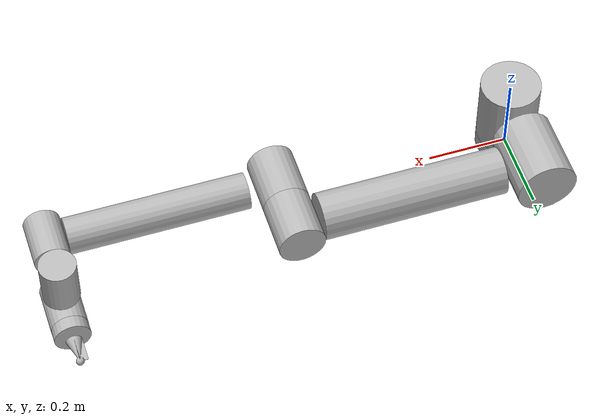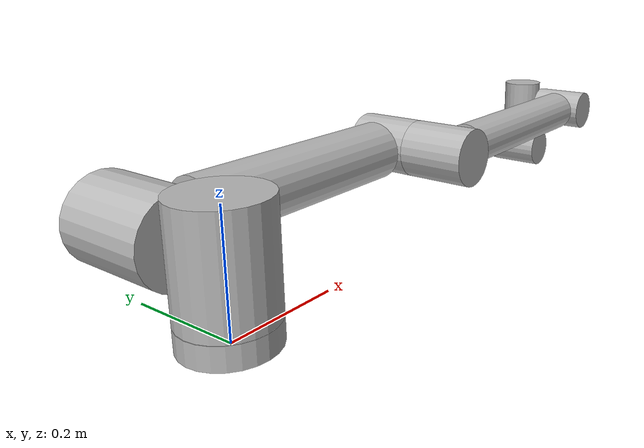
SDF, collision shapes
<?xml version='1.0'?>
<sdf version='1.6'>

  <model name='ur10'>
    <link name='base'>
      <inertial>
        <mass>4</mass>
        <inertia>
          <ixx>0.00610633</ixx>
          <ixy>0</ixy>
          <ixz>0</ixz>
          <iyy>0.00610633</iyy>
          <iyz>0</iyz>
          <izz>0.01125</izz>
        </inertia>
      </inertial>
      <collision name='collision_base'>
      <pose>0 0 0.019 0 -0 0</pose>
        <geometry>
          <cylinder>
            <radius>0.075</radius>
            <length>0.038</length>
          </cylinder>
        </geometry>
      </collision>
      <visual name='visual_base'>
        <geometry>
          <mesh>
            <uri>model://ur10/meshes/base.dae</uri>
          </mesh>
        </geometry>
      </visual>
    </link>
    <link name='shoulder'>
      <pose>0 0 .1273 0 -0 0</pose>
      <inertial>
        <mass>7.778</mass>
        <inertia>
          <ixx>0.0314743</ixx>
          <ixy>0</ixy>
          <ixz>0</ixz>
          <iyy>0.0314743</iyy>
          <iyz>0</iyz>
          <izz>0.0218756</izz>
        </inertia>
      </inertial>
      <collision name='collision_shoulder'>
        <geometry>
          <cylinder>
            <radius>0.075</radius>
            <length>0.177</length>
          </cylinder>
        </geometry>
      </collision>
      <visual name='visual_shoulder'>
        <geometry>
          <mesh>
            <uri>model://ur10/meshes/shoulder.dae</uri>
          </mesh>
        </geometry>
      </visual>
    </link>

    <link name='upper_arm'>
      <pose>0 0.220941 0.1273 3.14159 1.57079 3.14159</pose>
      <inertial>
        <pose>0 0 0.306 0 0 0</pose>
        <mass>12.93</mass>
        <inertia>
          <ixx>0.421754</ixx>
          <ixy>0</ixy>
          <ixz>0</ixz>
          <iyy>0.421754</iyy>
          <iyz>0</iyz>
          <izz>0.0363656</izz>
        </inertia>
      </inertial>

      <collision name='collision_upper_arm1'>
        <pose>0 -0.045 0 1.5707 0 0</pose>
        <geometry>
          <cylinder>
            <radius>0.075</radius>
            <length>0.177</length>
          </cylinder>
        </geometry>
      </collision>

      <collision name='collision_upper_arm2'>
        <pose>0 -0.0436 0.32 0 0 1.5707</pose>
        <geometry>
          <cylinder>
            <radius>0.058</radius>
            <length>0.461</length>
          </cylinder>
        </geometry>
      </collision>

      <collision name='collision_upper_arm3'>
        <pose>0 -0.040 0.613 1.5707 0 0</pose>
        <geometry>
          <cylinder>
            <radius>0.058</radius>
            <length>0.129</length>
          </cylinder>
        </geometry>
      </collision>

      <visual name='visual_upper_arm'>
        <geometry>
          <mesh>
            <uri>model://ur10/meshes/upperarm.dae</uri>
          </mesh>
        </geometry>
      </visual>
    </link>

    <link name='forearm'>
      <pose>0.612 0.049041 0.1273 3.14159 1.57079 3.14159</pose>
      <inertial>
        <pose>0 0 0.28615 0 -0 0</pose>
        <mass>3.87</mass>
        <inertia>
          <ixx>0.11107</ixx>
          <ixy>0</ixy>
          <ixz>0</ixz>
          <iyy>0.11107</iyy>
          <iyz>0</iyz>
          <izz>0.0108844</izz>
        </inertia>
      </inertial>
      <collision name='collision_forearm1'>
        <pose>0 0 0.001 1.5707 0 0</pose>
        <geometry>
          <cylinder>
            <radius>0.058</radius>
            <length>0.136</length>
          </cylinder>
        </geometry>
      </collision>

      <collision name='collision_forearm2'>
        <pose>0 0 0.305 0 0 1.5707</pose>
        <geometry>
          <cylinder>
            <radius>0.045</radius>
            <length>0.447</length>
          </cylinder>
        </geometry>
      </collision>

      <collision name='collision_forearm3'>
        <pose>0 0.001 0.5735 1.5707 0 0</pose>
        <geometry>
          <cylinder>
            <radius>0.045</radius>
            <length>0.119</length>
          </cylinder>
        </geometry>
      </collision>

      <visual name='visual_forearm'>
        <geometry>
          <mesh>
            <uri>model://ur10/meshes/forearm.dae</uri>
          </mesh>
        </geometry>
      </visual>
    </link>

    <link name='wrist_1'>
      <pose>1.1843 0.049041 0.1273 3.14159 3.58979e-09 3.14159</pose>
      <inertial>
        <mass>1.96</mass>
        <inertia>
          <ixx>0.00510825</ixx>
          <ixy>0</ixy>
          <ixz>0</ixz>
          <iyy>0.00510825</iyy>
          <iyz>0</iyz>
          <izz>0.0055125</izz>
        </inertia>
      </inertial>
      <collision name='collision_wrist_1'>
        <pose>0 0.115 0.0025 0 0 0</pose>
        <geometry>
          <cylinder>
            <radius>0.0455</radius>
            <length>0.119</length>
          </cylinder>
        </geometry>
      </collision>
      <visual name='visual_wrist_1'>
        <geometry>
          <mesh>
            <uri>model://ur10/meshes/wrist1.dae</uri>
          </mesh>
        </geometry>
      </visual>
    </link>

    <link name='wrist_2'>
      <pose>1.1843 0.163941 0.1273 3.14159 3.58979e-09 3.14159</pose>
      <inertial>
        <mass>1.96</mass>
        <inertia>
          <ixx>0.00510825</ixx>
          <ixy>0</ixy>
          <ixz>0</ixz>
          <iyy>0.00510825</iyy>
          <iyz>0</iyz>
          <izz>0.0055125</izz>
        </inertia>
      </inertial>
      <collision name='collision_wrist_2'>
        <pose>0 0.002 0.11659 1.5707 0 0</pose>
        <geometry>
          <cylinder>
            <radius>0.0455</radius>
            <length>0.119</length>
          </cylinder>
        </geometry>
      </collision>
      <visual name='visual_wrist_2'>
        <geometry>
          <mesh>
            <uri>model://ur10/meshes/wrist2.dae</uri>
          </mesh>
        </geometry>
      </visual>
    </link>

    <link name='wrist_3'>
      <pose>1.1843 0.163941 0.0116 3.14159 3.58979e-09 3.14159</pose>
      <inertial>
        <mass>0.202</mass>
        <inertia>
          <ixx>0.000526462</ixx>
          <ixy>0</ixy>
          <ixz>0</ixz>
          <iyy>0.000526462</iyy>
          <iyz>0</iyz>
          <izz>0.000568125</izz>
        </inertia>
      </inertial>
      <collision name='collision_wrist_3'>
        <pose>0 0.0765 0 1.5707 0 0</pose>
        <geometry>
          <cylinder>
            <radius>0.045</radius>
            <length>0.031</length>
          </cylinder>
        </geometry>
      </collision>
      <visual name='visual_wrist_3'>
        <geometry>
          <mesh>
            <uri>model://ur10/meshes/wrist3.dae</uri>
          </mesh>
        </geometry>
      </visual>
    </link>

    <link name='end_eff'>
      <pose>1.1843 0.265 0.0116 0 0 0</pose>
      <inertial>
        <mass>0.202</mass>
        <inertia>
          <ixx>0.000526462</ixx>
          <ixy>0</ixy>
          <ixz>0</ixz>
          <iyy>0.000526462</iyy>
          <iyz>0</iyz>
          <izz>0.000568125</izz>
        </inertia>
      </inertial>
      <collision name='collision_end_eff'>
      <pose>0 0 0 0 0 1.5707</pose>
        <geometry>
          <mesh>
            <uri>model://ur10/meshes/end.dae</uri>
          </mesh>
        </geometry>
      </collision>
      <visual name='visual_end_eff'>
      <pose>0 0 0 0 0 1.5707</pose>
        <geometry>
          <mesh>
            <uri>model://ur10/meshes/end.dae</uri>
          </mesh>
        </geometry>
      </visual>
    </link>

    <link name='tip'>
      <pose>1.1843 0.335 0.0116 0 0 0</pose>
      <inertial>
        <mass>0.01</mass>
        <inertia>
          <ixx>0.0001</ixx>
          <ixy>0</ixy>
          <ixz>0</ixz>
          <iyy>0.0001</iyy>
          <iyz>0</iyz>
          <izz>0.0001</izz>
        </inertia>
      </inertial>
      <visual name='visual_tip'>
      <pose>0 0 0 0 0 0</pose>
        <geometry>
			<sphere> <radius>.001</radius> </sphere>
        </geometry>
      </visual>
    </link>

    <joint name='shoulder_pan' type='revolute'>
      <child>shoulder</child>
      <parent>base</parent>
      <axis>
        <xyz>0 0 1</xyz>
        <limit>
          <lower>-3,14159</lower>
          <upper>3,14159</upper>
          <effort>330</effort>
          <velocity>2.16</velocity>
        </limit>
        <dynamics>
          <spring_reference>0</spring_reference>
          <spring_stiffness>0</spring_stiffness>
          <damping>0</damping>
          <friction>0</friction>
        </dynamics>
        <use_parent_model_frame>1</use_parent_model_frame>
      </axis>
            <physics>
        <ode>
          <limit>
            <cfm>0</cfm>
            <erp>0.2</erp>
          </limit>
          <suspension>
            <cfm>0</cfm>
            <erp>0.2</erp>
          </suspension>
        </ode>
      </physics>
    </joint>

    <joint name='shoulder_lift' type='revolute'>
      <child>upper_arm</child>
      <parent>shoulder</parent>
      <axis>
        <xyz>0 1 0</xyz>
        <limit>
          <lower>-3,14159</lower>
          <upper>3,14159</upper>
          <effort>330</effort>
          <velocity>2.16</velocity>
        </limit>
                <dynamics>
          <spring_reference>0</spring_reference>
          <spring_stiffness>0</spring_stiffness>
          <damping>0</damping>
          <friction>0</friction>
        </dynamics>
        <use_parent_model_frame>1</use_parent_model_frame>
      </axis>
            <physics>
        <ode>
          <limit>
            <cfm>0</cfm>
            <erp>0.2</erp>
          </limit>
          <suspension>
            <cfm>0</cfm>
            <erp>0.2</erp>
          </suspension>
        </ode>
      </physics>
    </joint>

    <joint name='elbow' type='revolute'>
      <child>forearm</child>
      <parent>upper_arm</parent>
      <axis>
        <xyz>0 1 0</xyz>
        <limit>
          <lower>-3,14159</lower>
          <upper>3,14159</upper>
          <effort>330</effort>
          <velocity>3.15</velocity>
        </limit>
        <use_parent_model_frame>1</use_parent_model_frame>
      </axis>
            <physics>
        <ode>
          <limit>
            <cfm>0</cfm>
            <erp>0.2</erp>
          </limit>
          <suspension>
            <cfm>0</cfm>
            <erp>0.2</erp>
          </suspension>
        </ode>
      </physics>
    </joint>

    <joint name='wrist_1_joint' type='revolute'>
      <child>wrist_1</child>
      <parent>forearm</parent>
      <axis>
        <xyz>0 1 0</xyz>
        <limit>
          <lower>-3,14159</lower>
          <upper>3,14159</upper>
          <effort>330</effort>
          <velocity>3</velocity>
        </limit>
                <dynamics>
          <spring_reference>0</spring_reference>
          <spring_stiffness>0</spring_stiffness>
          <damping>0</damping>
          <friction>0</friction>
        </dynamics>
        <use_parent_model_frame>1</use_parent_model_frame>
      </axis>
            <physics>
        <ode>
          <limit>
            <cfm>0</cfm>
            <erp>0.2</erp>
          </limit>
          <suspension>
            <cfm>0</cfm>
            <erp>0.2</erp>
          </suspension>
        </ode>
      </physics>
    </joint>

    <joint name='wrist_2_joint' type='revolute'>
      <child>wrist_2</child>
      <parent>wrist_1</parent>
      <axis>
        <xyz>0 0 1</xyz>
        <limit>
          <lower>-3,14159</lower>
          <upper>3,14159</upper>
          <effort>330</effort>
          <velocity>3.2</velocity>
        </limit>
                <dynamics>
          <spring_reference>0</spring_reference>
          <spring_stiffness>0</spring_stiffness>
          <damping>0</damping>
          <friction>0</friction>
        </dynamics>
        <use_parent_model_frame>1</use_parent_model_frame>
      </axis>
            <physics>
        <ode>
          <limit>
            <cfm>0</cfm>
            <erp>0.2</erp>
          </limit>
          <suspension>
            <cfm>0</cfm>
            <erp>0.2</erp>
          </suspension>
        </ode>
      </physics>
    </joint>

    <joint name='wrist_3_joint' type='revolute'>
      <child>wrist_3</child>
      <parent>wrist_2</parent>
      <axis>
        <xyz>0 1 0</xyz>
        <limit>
          <lower>-3,14159</lower>
          <upper>3,14159</upper>
          <effort>330</effort>
          <velocity>3.2</velocity>
        </limit>
                <dynamics>
          <spring_reference>0</spring_reference>
          <spring_stiffness>0</spring_stiffness>
          <damping>0</damping>
          <friction>0</friction>
        </dynamics>
        <use_parent_model_frame>1</use_parent_model_frame>
      </axis>
            <physics>
        <ode>
          <limit>
            <cfm>0</cfm>
            <erp>0.2</erp>
          </limit>
          <suspension>
            <cfm>0</cfm>
            <erp>0.2</erp>
          </suspension>
        </ode>
      </physics>
    </joint>

    <joint name='wrist3_to_end_eff' type='fixed'>
      <child>end_eff</child>
      <parent>wrist_3</parent>
    </joint>

    <joint name='end_eff_to_tip' type='fixed'>
      <child>tip</child>
      <parent>end_eff</parent>
    </joint>

	<joint name="fixed_to_ground" type="revolute">
	  <parent>world</parent>
	  <child>base</child>
		   <axis>
		    <limit>
		      <lower>0</lower>
		      <upper>0</upper>
		    </limit>
		    <xyz>0 0 1</xyz>
		    </axis>
	</joint>

  </model>
</sdf>
